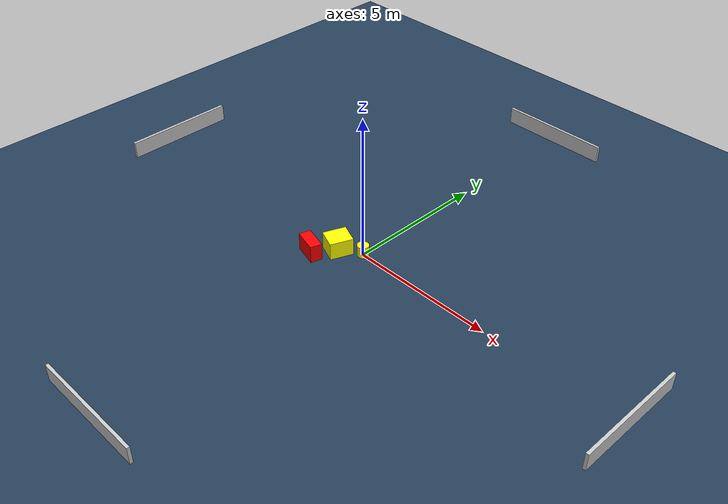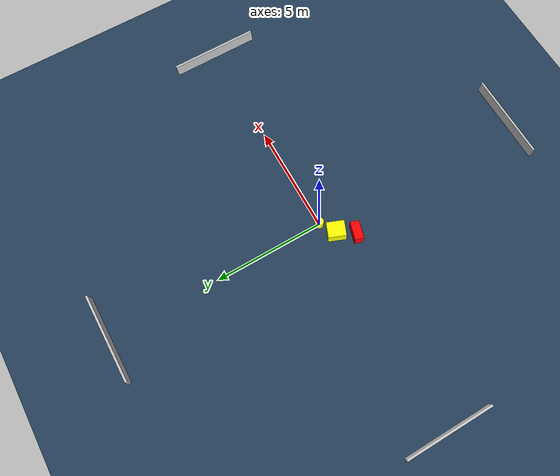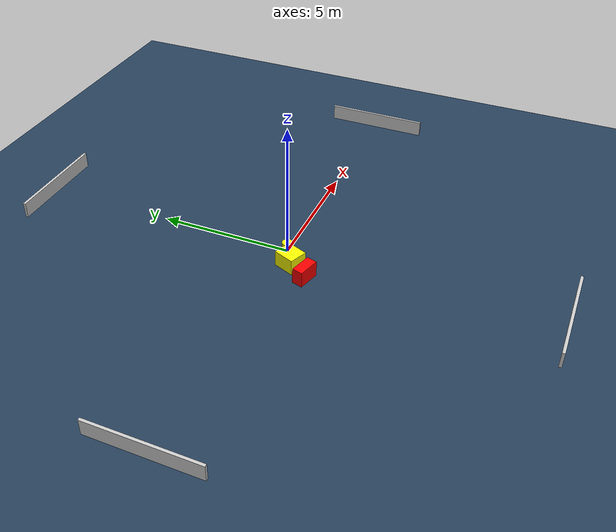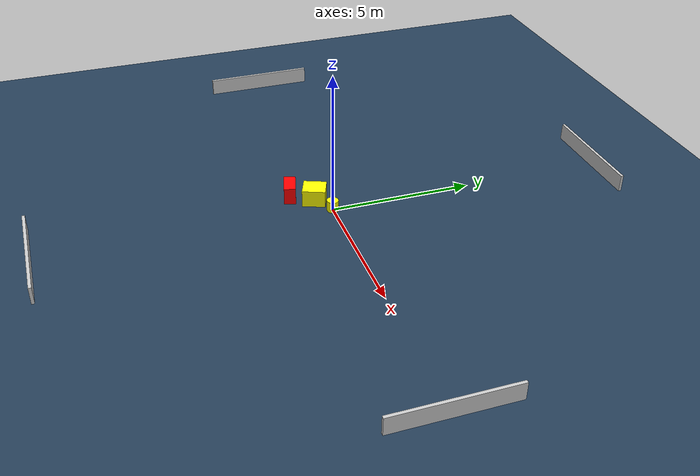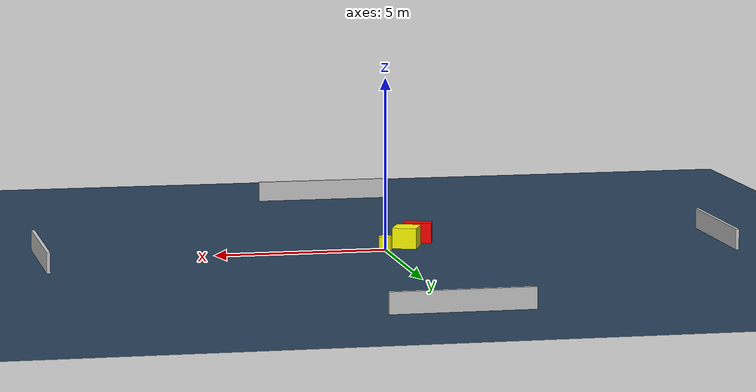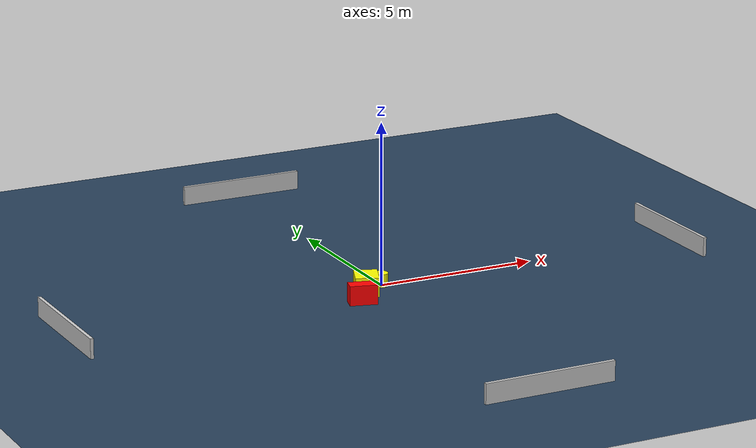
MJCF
<?xml version="1.0" ?>
<mujoco model="generated_environment">
  <option timestep="0.01" integrator="RK4" cone="elliptic"/>
  <default>
    <geom density="1"/>
  </default>
  <asset>
    <texture builtin="gradient" height="3072" name="skybox" rgb1="0.3 0.5 0.7" rgb2="0 0 0" type="skybox" width="512"/>
    <texture builtin="checker" height="300" name="groundplane" rgb1="0.2 0.3 0.4" rgb2="0.1 0.2 0.3" type="2d" width="300"/>
    <material name="groundplane" reflectance="0.2" texrepeat="5 5" texture="groundplane"/>
  </asset>
  <worldbody>
    <light dir="0 0 -1" directional="true" pos="0 0 1.5"/>
    <geom condim="3" friction="0.5 0.005 0.001" material="groundplane" name="floor" pos="0 0 0" size="0 0 0.05" type="plane"/>
    <body name="walls">
      <geom name="wall_1" condim="4" pos="-10.0 0.0 0.3" rgba="0.800000011920929 0.800000011920929 0.800000011920929 1.0" size="0.05 2.0 0.3" type="box"/>
      <geom name="wall_2" condim="4" pos="10.0 0.0 0.3" rgba="0.800000011920929 0.800000011920929 0.800000011920929 1.0" size="0.05 2.0 0.3" type="box"/>
      <geom name="wall_3" condim="4" pos="0.0 -10.0 0.3" rgba="0.800000011920929 0.800000011920929 0.800000011920929 1.0" size="2.0 0.05 0.3" type="box"/>
      <geom name="wall_4" condim="4" pos="0.0 10.0 0.3" rgba="0.800000011920929 0.800000011920929 0.800000011920929 1.0" size="2.0 0.05 0.3" type="box"/>
    </body>
    <body name="robot">
      <joint name="joint_x" type="slide" pos="0 0 0" axis="1 0 0"/>
      <joint name="joint_y" type="slide" pos="0 0 0" axis="0 1 0"/>
      <geom name="robot" type="cylinder" pos="0.0 0.0 0.2" size="0.2 0.2 0.0" mass="5.0" friction="1.0 0.005 0.0001" condim="4" rgba="1.0 1.0 0.0 1.0"/>
    </body>
    <body name="obstacle_1_movable">
      <geom name="obstacle_1_movable" condim="4" pos="-0.7179940656313001 -0.42443928331741204 0.3" euler="0 0 158.05181125897394" friction="0.0 0.005 0.001" rgba="1.0 1.0 0.0 1.0" size="0.3518309456827676 0.3998858015058193 0.3" type="box" mass="0.1"/>
      <joint type="free"/>
    </body>
    <body name="obstacle_2_static">
      <geom name="obstacle_2_static" condim="4" pos="-1.209589404237701 -1.1656160193684049 0.3" euler="0 0 164.42856114476484" friction="0.0 0.005 0.001" rgba="1.0 0.0 0.0 1.0" size="0.4143568452461278 0.2019404555920533 0.3" type="box"/>
    </body>
  </worldbody>
  <actuator>
    <motor name="actuator_x" joint="joint_x" gear="1" ctrlrange="-1 1"/>
    <motor name="actuator_y" joint="joint_y" gear="1" ctrlrange="-1 1"/>
  </actuator>
</mujoco>
